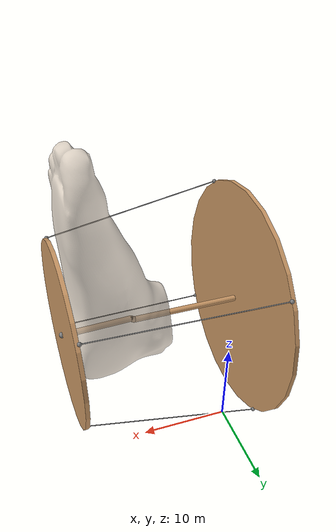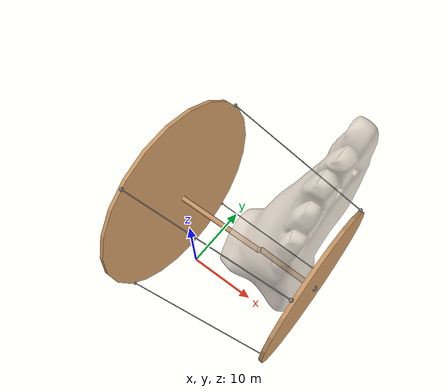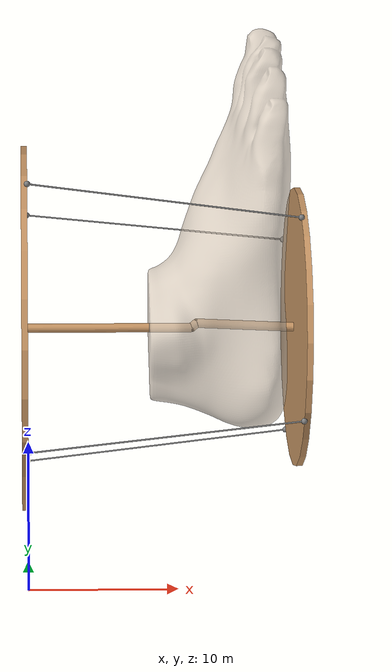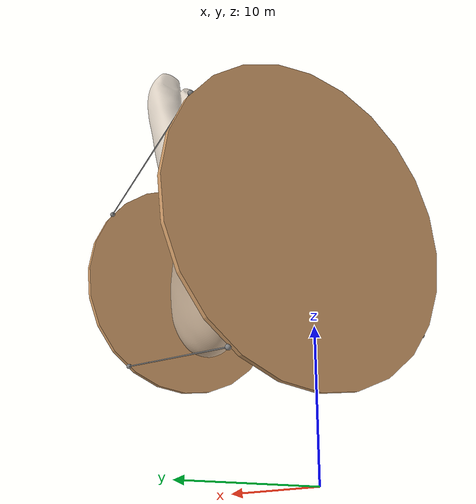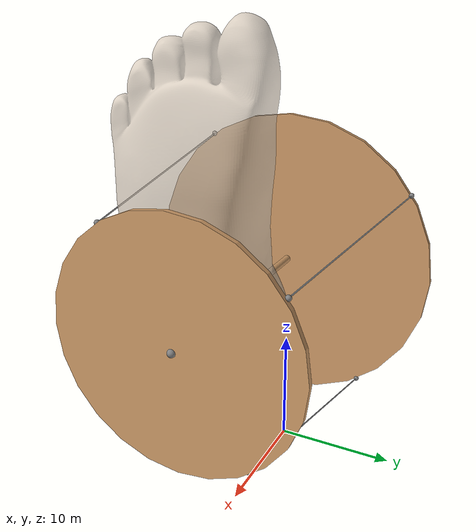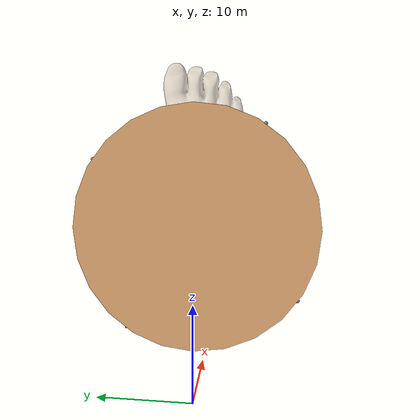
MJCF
<mujoco model="turmellbot">
  <compiler coordinate="global"/>
  <default>
    <geom rgba=".8 .6 .4 1"/>
  </default>
  <asset>
    <texture type="skybox" builtin="gradient" rgb1="1 1 1" rgb2=".6 .8 1" width="256" height="256"/>
    <mesh file="a-foot.stl" refpos="-10.84427 0.1037934 -17.62868" />
  </asset>
  <worldbody>
    <light pos="10 -10 50" dir="-10 10 -50" diffuse="1 1 1"/>
    <site name="reference" pos="5.938405e-19 -0.09110710 17.62735"/>
    <body>
     <geom name="base" type="cylinder" fromto="-0.4000000 -0.09110710 17.62735 5.938405e-19 -0.09110710 17.62735" size="12.032592"/>
     <site name="b1" pos="-6.093131e-16 6.659522 7.666812" size="0.2"/>
     <site name="b2" pos="6.105008e-16 -6.841736 27.58788" size="0.2"/>
     <site name="b3" pos="4.139506e-16 9.869429 24.37798" size="0.2"/>
     <site name="b4" pos="-4.127630e-16 -10.05164 10.87672" size="0.2"/>
      <geom name="leg" type="capsule" fromto="5.938405e-19 -0.09110710 17.62735 10.84427 -0.1037934 17.62868" size="0.3"/>
      <site name="shnk" pos="10.84427 -0.1037934 17.62868"/>
      <body>
        <geom name="comp" type="capsule" fromto="10.84427 -0.1037934 17.62868 11.19642 -0.01170672 17.90907" size="0.3"/>
        <joint name="TC" type="hinge" pos="10.84427 -0.1037934 17.62868" axis="-0.1740000 0.9790000 -0.1030000" limited="true" range="-20 20"/>
          <body>
           <geom name="b-foot" type="capsule" fromto="11.19642 -0.01170672 17.90907 17.61765 -0.09110710 17.62735" size="0.3"/>
           <joint name="ST" type="hinge" pos="11.19642 -0.01170672 17.90907" axis="-0.6420000 0.2080000 0.7380000" limited="true" range="-15 15"/>
           <geom name="ptfm" type="cylinder" fromto="17.61765 -0.09110710 17.627 18.01765 -0.09110710 17.62735" size="9.25584"/>
           <site name="ptfmc" pos="18.01765 -0.09110710 17.62735" size="0.3"/>
           <geom name="s-foot" type="mesh" mesh="a-foot" rgba=".85 .79 .72 0.7" density="0.01"/>
           <site name="p1" pos="17.61765 5.101684 9.965397" size="0.2"/>
           <site name="p2" pos="17.61765 -5.283899 25.28930" size="0.2"/>
           <site name="p3" pos="17.61765 7.570844 22.82014" size="0.2"/>
           <site name="p4" pos="17.61765 -7.753058 12.43456" size="0.2"/>
          </body>
      </body>
    </body>
  </worldbody>
  <tendon>
    <spatial name="t1" limited="true" range="17.83503 17.83513" width="0.05" stiffness="100" damping="100000">
      <site site="b1"/>
      <site site="p1"/>
    </spatial>
    <spatial name="t2"  limited="true" range="17.83503 17.83513" width="0.05" stiffness="100" damping="100000">
      <site site="b2"/>
      <site site="p2"/>
    </spatial>
    <spatial name="t3" limited="true" range="17.83503 17.83513" width="0.05" stiffness="100" damping="100000">
      <site site="b3"/>
      <site site="p3"/>
    </spatial>
    <spatial name="t4"  limited="true" range="17.83503 17.83513" width="0.05" stiffness="100" damping="100000">
      <site site="b4"/>
      <site site="p4"/>
    </spatial>
  </tendon>
  <actuator>
    <muscle name="t1" tendon="t1"/>
    <muscle name="t2" tendon="t2"/>
    <muscle name="t3" tendon="t3"/>
    <muscle name="t4" tendon="t4"/>
  </actuator>
  <sensor>
    <accelerometer name="ptfacc" site="ptfmc"/>
    <gyro name="ptfgyro" site="ptfmc"/>
    <tendonpos name="t1pos" tendon="t1"/>
    <tendonpos name="t2pos" tendon="t2"/>
    <tendonpos name="t3pos" tendon="t3"/>
    <tendonpos name="t4pos" tendon="t4"/>
    <jointpos name="TCpos" joint="ST"/>
    <jointpos name="STpos" joint="TC"/>
  </sensor>
</mujoco>
